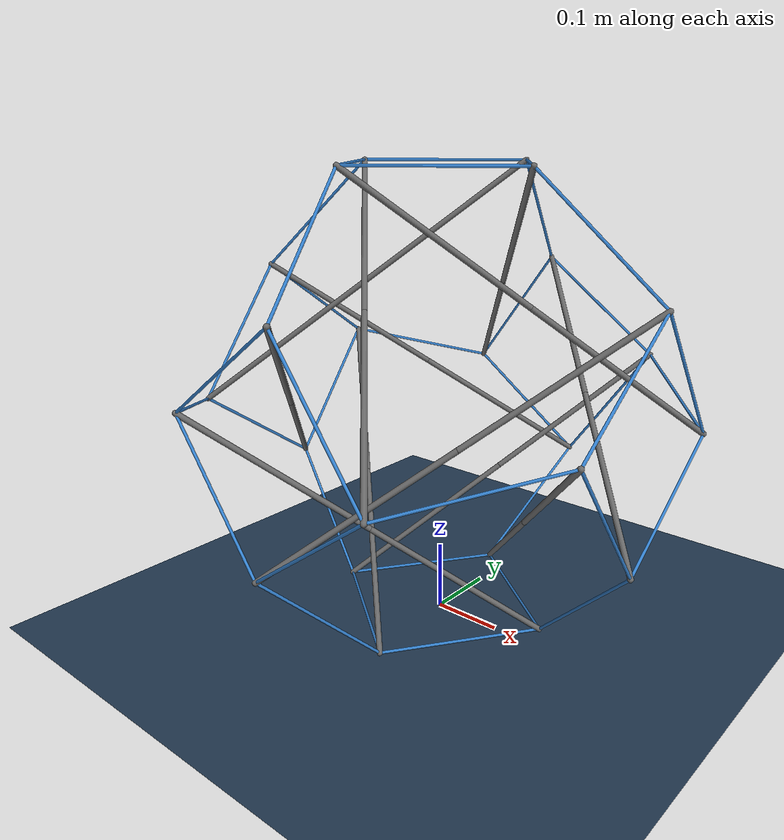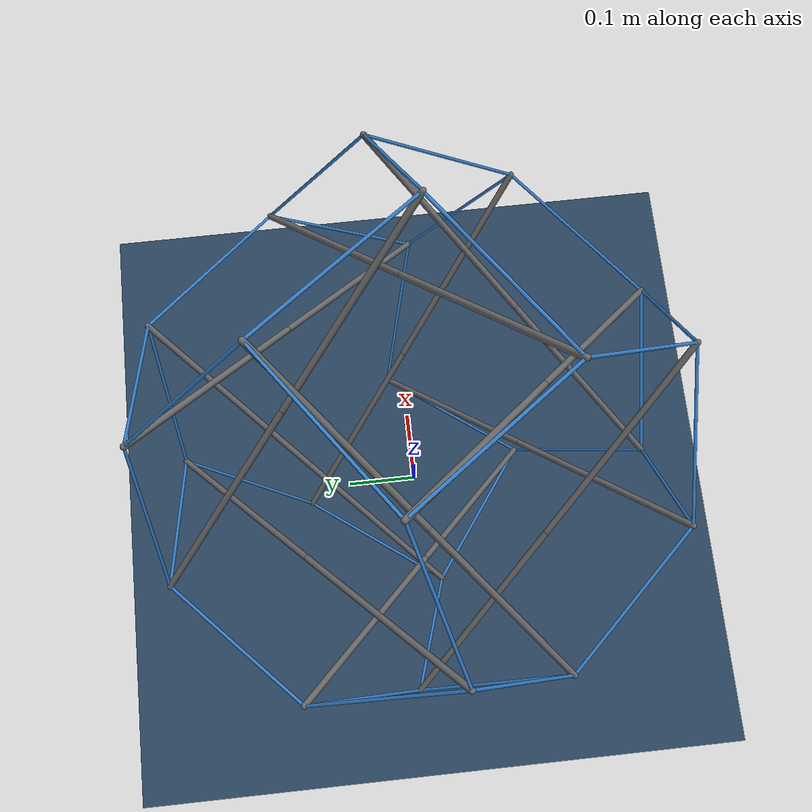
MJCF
<mujoco model="Truncated octahedron tensegrity">
  <option timestep="1.0000000000000001e-05"/>
  <default>
    <default class="/">
      <geom solref="0.0001 1"/>
      <equality solref="0.0001 1"/>
      <default class="bar">
        <joint type="slide" axis="0 0 1" limited="true" stiffness="862372.04334828781" range="0.52212820504653834 0.63815669505688022" springref="0.58014245005170928" damping="94.766158609701947"/>
        <geom type="capsule" size="0.0040000000000000001" rgba="0.40000000000000002 0.40000000000000002 0.40000000000000002 1" mass="0.0022964397864887218" fromto="0 0 0 0 0 0.29007122502585464"/>
        <site size="9.9999999999999995e-07"/>
      </default>
      <!-- Following element corresponds to using solreflimit attribute -->
      <!-- Following element corresponds to using stiffness attribute -->
      <default class="cable">
        <tendon width="0.002" rgba="0.20000000000000001 0.5 0.80000000000000004 0.90000000000000002" stiffness="274637.74945477257" damping="0"/>
      </default>
    </default>
  </default>
  <asset>
    <texture name="grid" type="2d" builtin="checker" rgb1="0.10000000000000001 0.20000000000000001 0.29999999999999999" rgb2="0.20000000000000001 0.29999999999999999 0.40000000000000002" width="512" height="512"/>
    <material name="grid" class="/" texture="grid" texrepeat="1 1" texuniform="true" reflectance="0.20000000000000001"/>
  </asset>
  <worldbody>
    <body name="member_0" pos="0.15976599999999999 -0.316992 0.30159200000000003" zaxis="-0.31953199999999998 0.34239199999999997 0.34239199999999997">
      <joint name="member_0_joint" class="/" type="free"/>
      <body name="member_0_node_0">
        <geom name="member_0_mass_0" class="bar"/>
        <site name="member_0_site_0" class="bar"/>
        <body name="member_0_node_1" pos="0 0 0.58014245005170928" zaxis="0 0 -1">
          <joint name="member_0_spring" class="bar" ref="0.58014245005170928"/>
          <geom name="member_0_mass_1" class="bar"/>
          <site name="member_0_site_1" class="bar"/>
        </body>
      </body>
    </body>
    <body name="member_1" pos="-0.025399999999999999 -0.316992 0.16722600000000001" zaxis="0.34239199999999997 0.34239199999999997 0.31953200000000004">
      <joint name="member_1_joint" class="/" type="free"/>
      <body name="member_1_node_0">
        <geom name="member_1_mass_0" class="bar"/>
        <site name="member_1_site_0" class="bar"/>
        <body name="member_1_node_1" pos="0 0 0.58014245005170928" zaxis="0 0 -1">
          <joint name="member_1_spring" class="bar" ref="0.58014245005170928"/>
          <geom name="member_1_mass_1" class="bar"/>
          <site name="member_1_site_1" class="bar"/>
        </body>
      </body>
    </body>
    <body name="member_2" pos="0.15976599999999999 0.025399999999999999 0.010000000000000009" zaxis="-0.31953199999999998 -0.34239199999999997 0.34239199999999997">
      <joint name="member_2_joint" class="/" type="free"/>
      <body name="member_2_node_0">
        <geom name="member_2_mass_0" class="bar"/>
        <site name="member_2_site_0" class="bar"/>
        <body name="member_2_node_1" pos="0 0 0.58014245005170928" zaxis="0 0 -1">
          <joint name="member_2_spring" class="bar" ref="0.58014245005170928"/>
          <geom name="member_2_mass_1" class="bar"/>
          <site name="member_2_site_1" class="bar"/>
        </body>
      </body>
    </body>
    <body name="member_3" pos="-0.316992 0.025399999999999999 0.16722600000000001" zaxis="0.34239199999999997 -0.34239199999999997 0.31953200000000004">
      <joint name="member_3_joint" class="/" type="free"/>
      <body name="member_3_node_0">
        <geom name="member_3_mass_0" class="bar"/>
        <site name="member_3_site_0" class="bar"/>
        <body name="member_3_node_1" pos="0 0 0.58014245005170928" zaxis="0 0 -1">
          <joint name="member_3_spring" class="bar" ref="0.58014245005170928"/>
          <geom name="member_3_mass_1" class="bar"/>
          <site name="member_3_site_1" class="bar"/>
        </body>
      </body>
    </body>
    <body name="member_4" pos="-0.025399999999999999 0.15976599999999999 0.010000000000000009" zaxis="0.34239199999999997 -0.31953199999999998 0.34239199999999997">
      <joint name="member_4_joint" class="/" type="free"/>
      <body name="member_4_node_0">
        <geom name="member_4_mass_0" class="bar"/>
        <site name="member_4_site_0" class="bar"/>
        <body name="member_4_node_1" pos="0 0 0.58014245005170928" zaxis="0 0 -1">
          <joint name="member_4_spring" class="bar" ref="0.58014245005170928"/>
          <geom name="member_4_mass_1" class="bar"/>
          <site name="member_4_site_1" class="bar"/>
        </body>
      </body>
    </body>
    <body name="member_5" pos="0.025399999999999999 -0.15976599999999999 0.010000000000000009" zaxis="-0.34239199999999997 0.31953199999999998 0.34239199999999997">
      <joint name="member_5_joint" class="/" type="free"/>
      <body name="member_5_node_0">
        <geom name="member_5_mass_0" class="bar"/>
        <site name="member_5_site_0" class="bar"/>
        <body name="member_5_node_1" pos="0 0 0.58014245005170928" zaxis="0 0 -1">
          <joint name="member_5_spring" class="bar" ref="0.58014245005170928"/>
          <geom name="member_5_mass_1" class="bar"/>
          <site name="member_5_site_1" class="bar"/>
        </body>
      </body>
    </body>
    <body name="member_6" pos="-0.316992 -0.15976599999999999 0.30159200000000003" zaxis="0.34239199999999997 0.31953199999999998 0.34239199999999997">
      <joint name="member_6_joint" class="/" type="free"/>
      <body name="member_6_node_0">
        <geom name="member_6_mass_0" class="bar"/>
        <site name="member_6_site_0" class="bar"/>
        <body name="member_6_node_1" pos="0 0 0.58014245005170928" zaxis="0 0 -1">
          <joint name="member_6_spring" class="bar" ref="0.58014245005170928"/>
          <geom name="member_6_mass_1" class="bar"/>
          <site name="member_6_site_1" class="bar"/>
        </body>
      </body>
    </body>
    <body name="member_7" pos="0.316992 0.15976599999999999 0.30159200000000003" zaxis="-0.34239199999999997 -0.31953199999999998 0.34239199999999997">
      <joint name="member_7_joint" class="/" type="free"/>
      <body name="member_7_node_0">
        <geom name="member_7_mass_0" class="bar"/>
        <site name="member_7_site_0" class="bar"/>
        <body name="member_7_node_1" pos="0 0 0.58014245005170928" zaxis="0 0 -1">
          <joint name="member_7_spring" class="bar" ref="0.58014245005170928"/>
          <geom name="member_7_mass_1" class="bar"/>
          <site name="member_7_site_1" class="bar"/>
        </body>
      </body>
    </body>
    <body name="member_8" pos="-0.15976599999999999 0.316992 0.30159200000000003" zaxis="0.31953199999999998 -0.34239199999999997 0.34239199999999997">
      <joint name="member_8_joint" class="/" type="free"/>
      <body name="member_8_node_0">
        <geom name="member_8_mass_0" class="bar"/>
        <site name="member_8_site_0" class="bar"/>
        <body name="member_8_node_1" pos="0 0 0.58014245005170928" zaxis="0 0 -1">
          <joint name="member_8_spring" class="bar" ref="0.58014245005170928"/>
          <geom name="member_8_mass_1" class="bar"/>
          <site name="member_8_site_1" class="bar"/>
        </body>
      </body>
    </body>
    <body name="member_9" pos="0.316992 -0.025399999999999999 0.16722600000000001" zaxis="-0.34239199999999997 0.34239199999999997 0.31953200000000004">
      <joint name="member_9_joint" class="/" type="free"/>
      <body name="member_9_node_0">
        <geom name="member_9_mass_0" class="bar"/>
        <site name="member_9_site_0" class="bar"/>
        <body name="member_9_node_1" pos="0 0 0.58014245005170928" zaxis="0 0 -1">
          <joint name="member_9_spring" class="bar" ref="0.58014245005170928"/>
          <geom name="member_9_mass_1" class="bar"/>
          <site name="member_9_site_1" class="bar"/>
        </body>
      </body>
    </body>
    <body name="member_10" pos="-0.15976599999999999 -0.025399999999999999 0.010000000000000009" zaxis="0.31953199999999998 0.34239199999999997 0.34239199999999997">
      <joint name="member_10_joint" class="/" type="free"/>
      <body name="member_10_node_0">
        <geom name="member_10_mass_0" class="bar"/>
        <site name="member_10_site_0" class="bar"/>
        <body name="member_10_node_1" pos="0 0 0.58014245005170928" zaxis="0 0 -1">
          <joint name="member_10_spring" class="bar" ref="0.58014245005170928"/>
          <geom name="member_10_mass_1" class="bar"/>
          <site name="member_10_site_1" class="bar"/>
        </body>
      </body>
    </body>
    <body name="member_11" pos="0.025399999999999999 0.316992 0.16722600000000001" zaxis="-0.34239199999999997 -0.34239199999999997 0.31953200000000004">
      <joint name="member_11_joint" class="/" type="free"/>
      <body name="member_11_node_0">
        <geom name="member_11_mass_0" class="bar"/>
        <site name="member_11_site_0" class="bar"/>
        <body name="member_11_node_1" pos="0 0 0.58014245005170928" zaxis="0 0 -1">
          <joint name="member_11_spring" class="bar" ref="0.58014245005170928"/>
          <geom name="member_11_mass_1" class="bar"/>
          <site name="member_11_site_1" class="bar"/>
        </body>
      </body>
    </body>
    <geom name="floor" class="/" type="plane" size="0 0 0.050000000000000003" material="grid"/>
    <light name="spotlight" class="/" mode="trackcom" pos="0 0 6" diffuse="0.80000000000000004 0.80000000000000004 0.80000000000000004" specular="0.29999999999999999 0.29999999999999999 0.29999999999999999"/>
  </worldbody>
  <tendon>
    <spatial name="member_12" class="cable" springlength="0.22878083292094203">
      <site site="member_8_site_1"/>
      <site site="member_7_site_1"/>
    </spatial>
    <spatial name="member_13" class="cable" springlength="0.22878083292094203">
      <site site="member_0_site_1"/>
      <site site="member_7_site_1"/>
    </spatial>
    <spatial name="member_14" class="cable" springlength="0.22878083292094203">
      <site site="member_0_site_1"/>
      <site site="member_6_site_1"/>
    </spatial>
    <spatial name="member_15" class="cable" springlength="0.22878083292094203">
      <site site="member_6_site_1"/>
      <site site="member_8_site_1"/>
    </spatial>
    <spatial name="member_16" class="cable" springlength="0.22878083292094203">
      <site site="member_0_site_0"/>
      <site site="member_3_site_1"/>
    </spatial>
    <spatial name="member_17" class="cable" springlength="0.22878083292094203">
      <site site="member_6_site_0"/>
      <site site="member_11_site_1"/>
    </spatial>
    <spatial name="member_18" class="cable" springlength="0.22878083292094203">
      <site site="member_8_site_0"/>
      <site site="member_9_site_1"/>
    </spatial>
    <spatial name="member_19" class="cable" springlength="0.22878083292094203">
      <site site="member_7_site_0"/>
      <site site="member_1_site_1"/>
    </spatial>
    <spatial name="member_20" class="cable" springlength="0.22878083292094203">
      <site site="member_2_site_1"/>
      <site site="member_3_site_1"/>
    </spatial>
    <spatial name="member_21" class="cable" springlength="0.22878083292094203">
      <site site="member_5_site_1"/>
      <site site="member_11_site_1"/>
    </spatial>
    <spatial name="member_22" class="cable" springlength="0.22878083292094203">
      <site site="member_10_site_1"/>
      <site site="member_9_site_1"/>
    </spatial>
    <spatial name="member_23" class="cable" springlength="0.22878083292094203">
      <site site="member_4_site_1"/>
      <site site="member_1_site_1"/>
    </spatial>
    <spatial name="member_24" class="cable" springlength="0.22878083292094203">
      <site site="member_1_site_0"/>
      <site site="member_0_site_0"/>
    </spatial>
    <spatial name="member_25" class="cable" springlength="0.22878083292094203">
      <site site="member_3_site_0"/>
      <site site="member_6_site_0"/>
    </spatial>
    <spatial name="member_26" class="cable" springlength="0.22878083292094203">
      <site site="member_11_site_0"/>
      <site site="member_8_site_0"/>
    </spatial>
    <spatial name="member_27" class="cable" springlength="0.22878083292094203">
      <site site="member_9_site_0"/>
      <site site="member_7_site_0"/>
    </spatial>
    <spatial name="member_28" class="cable" springlength="0.22878083292094203">
      <site site="member_1_site_0"/>
      <site site="member_2_site_1"/>
    </spatial>
    <spatial name="member_29" class="cable" springlength="0.22878083292094203">
      <site site="member_3_site_0"/>
      <site site="member_5_site_1"/>
    </spatial>
    <spatial name="member_30" class="cable" springlength="0.22878083292094203">
      <site site="member_11_site_0"/>
      <site site="member_10_site_1"/>
    </spatial>
    <spatial name="member_31" class="cable" springlength="0.22878083292094203">
      <site site="member_9_site_0"/>
      <site site="member_4_site_1"/>
    </spatial>
    <spatial name="member_32" class="cable" springlength="0.22878083292094203">
      <site site="member_2_site_0"/>
      <site site="member_5_site_0"/>
    </spatial>
    <spatial name="member_33" class="cable" springlength="0.22878083292094203">
      <site site="member_10_site_0"/>
      <site site="member_5_site_0"/>
    </spatial>
    <spatial name="member_34" class="cable" springlength="0.22878083292094203">
      <site site="member_4_site_0"/>
      <site site="member_10_site_0"/>
    </spatial>
    <spatial name="member_35" class="cable" springlength="0.22878083292094203">
      <site site="member_2_site_0"/>
      <site site="member_4_site_0"/>
    </spatial>
    <spatial name="member_36" class="cable" springlength="0.22808040282321493">
      <site site="member_3_site_1"/>
      <site site="member_7_site_1"/>
    </spatial>
    <spatial name="member_37" class="cable" springlength="0.22808040282321493">
      <site site="member_11_site_1"/>
      <site site="member_0_site_1"/>
    </spatial>
    <spatial name="member_38" class="cable" springlength="0.22808040282321493">
      <site site="member_1_site_1"/>
      <site site="member_8_site_1"/>
    </spatial>
    <spatial name="member_39" class="cable" springlength="0.22808040282321493">
      <site site="member_9_site_1"/>
      <site site="member_6_site_1"/>
    </spatial>
    <spatial name="member_40" class="cable" springlength="0.22808040282321493">
      <site site="member_0_site_0"/>
      <site site="member_4_site_1"/>
    </spatial>
    <spatial name="member_41" class="cable" springlength="0.22808040282321493">
      <site site="member_6_site_0"/>
      <site site="member_2_site_1"/>
    </spatial>
    <spatial name="member_42" class="cable" springlength="0.22808040282321493">
      <site site="member_8_site_0"/>
      <site site="member_5_site_1"/>
    </spatial>
    <spatial name="member_43" class="cable" springlength="0.22808040282321493">
      <site site="member_7_site_0"/>
      <site site="member_10_site_1"/>
    </spatial>
    <spatial name="member_44" class="cable" springlength="0.22808040282321493">
      <site site="member_5_site_0"/>
      <site site="member_1_site_0"/>
    </spatial>
    <spatial name="member_45" class="cable" springlength="0.22808040282321493">
      <site site="member_10_site_0"/>
      <site site="member_3_site_0"/>
    </spatial>
    <spatial name="member_46" class="cable" springlength="0.22808040282321493">
      <site site="member_4_site_0"/>
      <site site="member_11_site_0"/>
    </spatial>
    <spatial name="member_47" class="cable" springlength="0.22808040282321493">
      <site site="member_2_site_0"/>
      <site site="member_9_site_0"/>
    </spatial>
  </tendon>
  <sensor>
  </sensor>
</mujoco>
